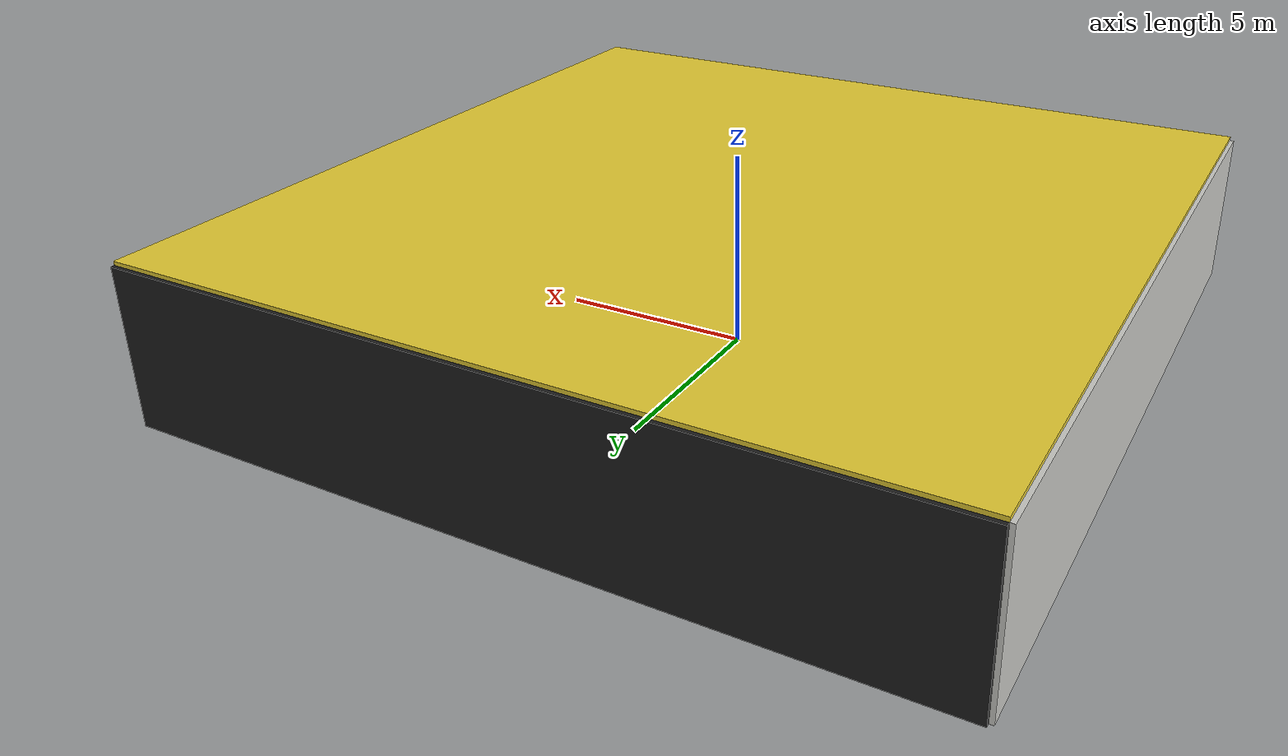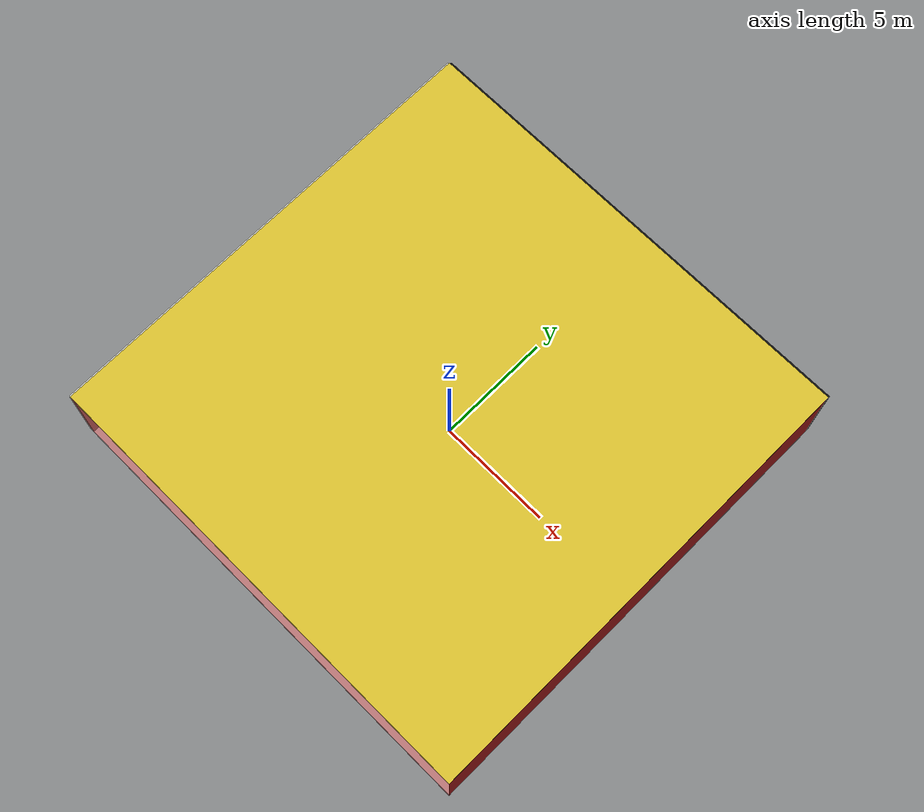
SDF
<sdf version="1.4">
 <world name="default">
  <physics type="ode">
   <max_step_size>0.001</max_step_size>
   <real_time_factor>1</real_time_factor>
   <real_time_update_rate>1000</real_time_update_rate>
   <gravity>0 0 -9.8</gravity>
  </physics>
  <scene><ambient>0.4 0.4 0.4 1</ambient><background>0.7 0.7 0.7 1</background><shadows>1</shadows></scene>
  <model name="Surrounding">
   <static>1</static>
   <link name="Ceiling">
    <collision name="Ceiling_Collision"><geometry><box><size>20 20 0.1</size></box></geometry></collision>
    <visual name="Ceiling_Visual">
     <geometry><box><size>20 20 0.1</size></box></geometry>
     <material>
      <script><uri>file://media/materials/scripts/gazebo.material</uri><name>Gazebo/ZincYellow</name></script>
     </material>
    </visual>
    <pose>0 0 4.05 0 0 0</pose>
   </link>
   <link name="Wall_South">
    <collision name="Wall_South_Collision">
     <geometry><box><size>20 0 4</size></box></geometry>
     <pose>0 0 2 0 -0 0</pose>
    </collision>
    <visual name="Wall_South_Visual">
     <pose>0 0 2 0 -0 0</pose>
     <geometry><box><size>20 0 4</size></box></geometry>
     <material>
      <script><uri>file://media/materials/scripts/gazebo.material</uri><name>Gazebo/RedTransparent</name></script>
     </material>
    </visual>
    <velocity_decay><linear>0</linear><angular>0</angular></velocity_decay>
    <pose>0 -10 0 0 -0 0</pose>
   </link>
   <link name="Wall_East">
    <collision name="Wall_21_Collision">
     <geometry><box><size>20 0 4</size></box></geometry>
     <pose>0 0 2 0 -0 0</pose>
    </collision>
    <visual name="Wall_21_Visual">
     <pose>0 0 2 0 -0 0</pose>
     <geometry><box><size>20 0 4</size></box></geometry>
     <material>
      <script><uri>file://media/materials/scripts/gazebo.material</uri><name>Gazebo/Red</name></script>
     </material>
    </visual>
    <velocity_decay><linear>0</linear><angular>0</angular></velocity_decay>
    <pose>10 0 0 0 -0 1.5708</pose>
   </link>
   <link name="Wall_North">
    <collision name="Wall_22_Collision">
     <geometry><box><size>20 0.2 4</size></box></geometry>
     <pose>0 0 2 0 -0 0</pose>
    </collision>
    <visual name="Wall_22_Visual">
     <pose>0 0 2 0 -0 0</pose>
     <geometry><box><size>20 0.2 4</size></box></geometry>
     <material>
      <script><uri>file://media/materials/scripts/gazebo.material</uri><name>Gazebo/FlatBlack</name></script>
     </material>
    </visual>
    <velocity_decay><linear>0</linear><angular>0</angular></velocity_decay>
    <pose>0 10 0 0 -0 0</pose>
   </link>
   <link name="Wall_West">
    <collision name="Wall_23_Collision">
     <geometry><box><size>20 0.2 4</size></box></geometry>
     <pose>0 0 2 0 -0 0</pose>
    </collision>
    <visual name="Wall_23_Visual">
     <pose>0 0 2 0 -0 0</pose>
     <geometry><box><size>20 0.2 4</size></box></geometry>
     <material>
      <script><uri>file://media/materials/scripts/gazebo.material</uri><name>Gazebo/CeilingTiled</name></script>
     </material>
    </visual>
    <velocity_decay><linear>0</linear><angular>0</angular></velocity_decay>
    <pose>-10 0 0 0 0 -1.5708</pose>
   </link>
   <link name="Ground_link">
    <collision name="collision">
     <pose>0 0 .05 0 -0 0</pose>
     <geometry><box><size>20 20 0.1</size></box></geometry>
    </collision>
    <visual name="visual">
     <pose>0 0 .05 0 -0 0</pose>
     <geometry><box><size>20 20 0.1</size></box></geometry>
     <material>
      <script><uri>file://media/materials/scripts/gazebo.material</uri><name>Gazebo/White</name></script>
     </material>
    </visual>
   </link>
   <static>1</static>
  </model>
  <spherical_coordinates>
   <surface_model>EARTH_WGS84</surface_model>
   <latitude_deg>0</latitude_deg>
   <longitude_deg>0</longitude_deg>
   <elevation>0</elevation>
   <heading_deg>0</heading_deg>
  </spherical_coordinates>
  <light name="lightball_0" type="diffuse">
   <diffuse>0.8 0.8 0.8 1</diffuse>
   <specular>0.2 0.2 0.2 1</specular>
   <attenuation>
    <range>100</range>
    <constant>0.7</constant>
    <linear>0.01</linear>
    <quadratic>0.001</quadratic>
   </attenuation>
   <direction>-0.5 0.1 -0.9</direction>
   <pose>-9.92848750297 -5.49276060308 2.25030447159 0 0 0</pose>
  </light>
  <include><uri>model://table</uri><pose>-7.19420753943 -0.836051427071 0 0 0 1.30676288501</pose></include>
  <include><uri>model://cabinet</uri><pose>-1.86131270684 0.791373756383 0 0 0 2.06332592179</pose></include>
  <include>
   <uri>model://construction_cone</uri>
   <pose>1.0228820984 -4.40900523833 0 0 0 1.37433205321</pose>
  </include>
  <include><uri>model://cabinet</uri><pose>7.54935817422 -3.78754315094 0 0 0 2.32712307303</pose></include>
  <include>
   <uri>model://construction_cone</uri>
   <pose>7.95014409894 4.79622270592 0 0 0 1.44892568228</pose>
  </include>
 </world>
</sdf>

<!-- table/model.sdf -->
<sdf version="1.5">
  <model name="table">
    <static>true</static>
    <link name="link">
      <collision name="surface">
        <pose>0 0 1.0 0 0 0</pose>
        <geometry>
          <box>
            <size>1.5 0.8 0.03</size>
          </box>
        </geometry>
        <surface>
          <friction>
            <ode>
              <mu>0.6</mu>
              <mu2>0.6</mu2>
            </ode>
          </friction>
        </surface>
      </collision>
      <visual name="visual1">
        <pose>0 0 1.0 0 0 0</pose>
        <geometry>
          <box>
            <size>1.5 0.8 0.03</size>
          </box>
        </geometry>
        <material>
          <script>
            <uri>model://media/materials/scripts/gazebo.material</uri>
            <name>Gazebo/Wood</name>
          </script>
        </material>
      </visual>
      <collision name="front_left_leg">
        <pose>0.68 0.38 0.5 0 0 0</pose>
        <geometry>
          <cylinder>
            <radius>0.02</radius>
            <length>1.0</length>
          </cylinder>
        </geometry>
      </collision>
      <visual name="front_left_leg">
        <pose>0.68 0.38 0.5 0 0 0</pose>
        <geometry>
          <cylinder>
            <radius>0.02</radius>
            <length>1.0</length>
          </cylinder>
        </geometry>
        <material>
          <script>
            <uri>model://media/materials/scripts/gazebo.material</uri>
            <name>Gazebo/Grey</name>
          </script>
        </material>
      </visual>
      <collision name="front_right_leg">
        <pose>0.68 -0.38 0.5 0 0 0</pose>
        <geometry>
          <cylinder>
            <radius>0.02</radius>
            <length>1.0</length>
          </cylinder>
        </geometry>
      </collision>
      <visual name="front_right_leg">
        <pose>0.68 -0.38 0.5 0 0 0</pose>
        <geometry>
          <cylinder>
            <radius>0.02</radius>
            <length>1.0</length>
          </cylinder>
        </geometry>
        <material>
          <script>
            <uri>model://media/materials/scripts/gazebo.material</uri>
            <name>Gazebo/Grey</name>
          </script>
        </material>
      </visual>
      <collision name="back_right_leg">
        <pose>-0.68 -0.38 0.5 0 0 0</pose>
        <geometry>
          <cylinder>
            <radius>0.02</radius>
            <length>1.0</length>
          </cylinder>
        </geometry>
      </collision>
      <visual name="back_right_leg">
        <pose>-0.68 -0.38 0.5 0 0 0</pose>
        <geometry>
          <cylinder>
            <radius>0.02</radius>
            <length>1.0</length>
          </cylinder>
        </geometry>
        <material>
          <script>
            <uri>model://media/materials/scripts/gazebo.material</uri>
            <name>Gazebo/Grey</name>
          </script>
        </material>
      </visual>
      <collision name="back_left_leg">
        <pose>-0.68 0.38 0.5 0 0 0</pose>
        <geometry>
          <cylinder>
            <radius>0.02</radius>
            <length>1.0</length>
          </cylinder>
        </geometry>
      </collision>
      <visual name="back_left_leg">
        <pose>-0.68 0.38 0.5 0 0 0</pose>
        <geometry>
          <cylinder>
            <radius>0.02</radius>
            <length>1.0</length>
          </cylinder>
        </geometry>
        <material>
          <script>
            <uri>model://media/materials/scripts/gazebo.material</uri>
            <name>Gazebo/Grey</name>
          </script>
        </material>
      </visual>
    </link>
  </model>
</sdf>

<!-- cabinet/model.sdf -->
<sdf version="1.5">
  <model name="cabinet">
    <static>true</static>
    <link name="cabinet_bottom_plate">
      <inertial>
        <pose>0 0 -1 0 0 0</pose>
        <inertia>
          <ixx>2.050000</ixx>
          <ixy>0</ixy>
          <ixz>0</ixz>
          <iyy>2.050000</iyy>
          <iyz>0</iyz>
          <izz>2.050000</izz>
        </inertia>
        <mass>25.000000</mass>
      </inertial>
      <collision name="cabinet_bottom_plate_geom">
        <pose>0 0 0.010000 0 0 0</pose>
        <geometry>
          <box>
            <size>0.450000 0.450000 0.020000</size>
          </box>
        </geometry>
      </collision>
      <visual name="cabinet_bottom_plate_geom_visual">
        <pose>0 0 0.010000 0 0 0</pose>
        <geometry>
          <box>
            <size>0.450000 0.450000 0.020000</size>
          </box>
        </geometry>
        <material>
          <script>
            <uri>model://media/materials/scripts/gazebo.material</uri>
            <name>Gazebo/Wood</name>
          </script>
        </material>
      </visual>
      <collision name="cabinet_bottom_plate_geom_cabinet_back_plate">
        <pose>0.235000 0 0.510000 0 0 0</pose>
        <geometry>
          <box>
            <size>0.020000 0.450000 1.020000</size>
          </box>
        </geometry>
      </collision>
      <visual name="cabinet_bottom_plate_geom_cabinet_back_plate_visual">
        <pose>0.235000 0 0.510000 0 0 0</pose>
        <geometry>
          <box>
            <size>0.020000 0.450000 1.020000</size>
          </box>
        </geometry>
        <material>
          <script>
            <uri>model://media/materials/scripts/gazebo.material</uri>
            <name>Gazebo/Wood</name>
          </script>
        </material>
      </visual>
      <collision name="cabinet_bottom_plate_geom_cabinet_left_plate">
        <pose>0 0.235000 0.510000 0 0 0</pose>
        <geometry>
          <box>
            <size>0.450000 0.020000 1.020000</size>
          </box>
        </geometry>
      </collision>
      <visual name="cabinet_bottom_plate_geom_cabinet_left_plate_visual">
        <pose>0 0.235000 0.510000 0 0 0</pose>
        <geometry>
          <box>
            <size>0.450000 0.020000 1.020000</size>
          </box>
        </geometry>
        <material>
          <script>
            <uri>model://media/materials/scripts/gazebo.material</uri>
            <name>Gazebo/Wood</name>
          </script>
        </material>
      </visual>
      <collision name="cabinet_bottom_plate_geom_cabinet_middle_plate">
        <pose>0 0 0.510000 0 0 0</pose>
        <geometry>
          <box>
            <size>0.450000 0.450000 0.020000</size>
          </box>
        </geometry>
      </collision>
      <visual name="cabinet_bottom_plate_geom_cabinet_middle_plate_visual">
        <pose>0 0 0.510000 0 0 0</pose>
        <geometry>
          <box>
            <size>0.450000 0.450000 0.020000</size>
          </box>
        </geometry>
        <material>
          <script>
            <uri>model://media/materials/scripts/gazebo.material</uri>
            <name>Gazebo/Wood</name>
          </script>
        </material>
      </visual>
      <collision name="cabinet_bottom_plate_geom_cabinet_right_plate">
        <pose>0 -0.235000 0.510000 0 0 0</pose>
        <geometry>
          <box>
            <size>0.450000 0.020000 1.020000</size>
          </box>
        </geometry>
      </collision>
      <visual name="cabinet_bottom_plate_geom_cabinet_right_plate_visual">
        <pose>0 -0.235000 0.510000 0 0 0</pose>
        <geometry>
          <box>
            <size>0.450000 0.020000 1.020000</size>
          </box>
        </geometry>
        <material>
          <script>
            <uri>model://media/materials/scripts/gazebo.material</uri>
            <name>Gazebo/Wood</name>
          </script>
        </material>
      </visual>
      <collision name="cabinet_bottom_plate_geom_cabinet_top_plate">
        <pose>0 0 1.010000 0 0 0</pose>
        <geometry>
          <box>
            <size>0.450000 0.450000 0.020000</size>
          </box>
        </geometry>
      </collision>
      <visual name="cabinet_bottom_plate_geom_cabinet_top_plate_visual">
        <pose>0 0 1.010000 0 0 0</pose>
        <geometry>
          <box>
            <size>0.450000 0.450000 0.020000</size>
          </box>
        </geometry>
        <material>
          <script>
            <uri>model://media/materials/scripts/gazebo.material</uri>
            <name>Gazebo/Wood</name>
          </script>
        </material>
      </visual>
    </link>
  </model>
</sdf>

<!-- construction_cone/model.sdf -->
<sdf version="1.5">
  <model name="Construction Cone">
    <link name="link">
      <collision name="collision">
        <geometry>
          <mesh>
            <scale>10 10 10</scale>
            <uri>file://isr-testbed/construction_cone/meshes/construction_cone.dae</uri>
          </mesh>
        </geometry>
      </collision>
      <visual name="visual">
        <geometry>
          <mesh>
            <scale>10 10 10</scale>
            <uri>file://isr-testbed/construction_cone/meshes/construction_cone.dae</uri>
          </mesh>
        </geometry>
      </visual>
    </link>
  </model>
</sdf>
